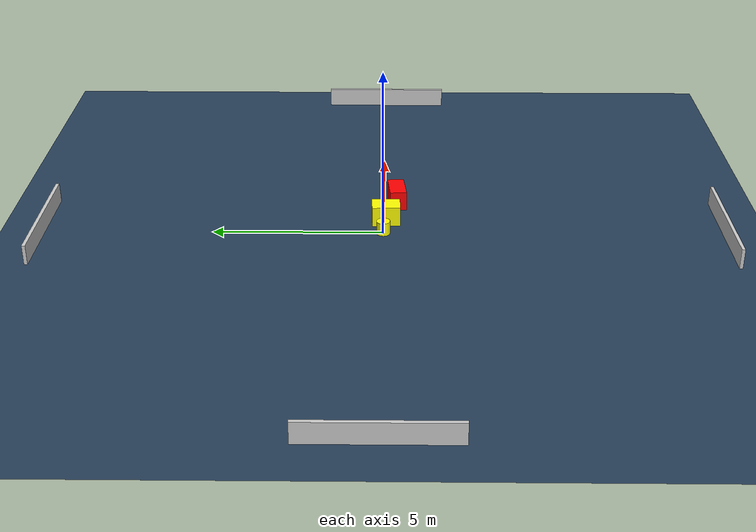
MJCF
<?xml version="1.0" ?>
<mujoco model="generated_environment">
  <option timestep="0.01" integrator="RK4" cone="elliptic"/>
  <default>
    <geom density="1"/>
  </default>
  <asset>
    <texture builtin="gradient" height="3072" name="skybox" rgb1="0.3 0.5 0.7" rgb2="0 0 0" type="skybox" width="512"/>
    <texture builtin="checker" height="300" name="groundplane" rgb1="0.2 0.3 0.4" rgb2="0.1 0.2 0.3" type="2d" width="300"/>
    <material name="groundplane" reflectance="0.2" texrepeat="5 5" texture="groundplane"/>
  </asset>
  <worldbody>
    <light dir="0 0 -1" directional="true" pos="0 0 1.5"/>
    <geom condim="3" friction="0.5 0.005 0.001" material="groundplane" name="floor" pos="0 0 0" size="0 0 0.05" type="plane"/>
    <body name="walls">
      <geom name="wall_1" condim="4" pos="-10.0 0.0 0.3" rgba="0.800000011920929 0.800000011920929 0.800000011920929 1.0" size="0.05 2.0 0.3" type="box"/>
      <geom name="wall_2" condim="4" pos="10.0 0.0 0.3" rgba="0.800000011920929 0.800000011920929 0.800000011920929 1.0" size="0.05 2.0 0.3" type="box"/>
      <geom name="wall_3" condim="4" pos="0.0 -10.0 0.3" rgba="0.800000011920929 0.800000011920929 0.800000011920929 1.0" size="2.0 0.05 0.3" type="box"/>
      <geom name="wall_4" condim="4" pos="0.0 10.0 0.3" rgba="0.800000011920929 0.800000011920929 0.800000011920929 1.0" size="2.0 0.05 0.3" type="box"/>
    </body>
    <body name="robot">
      <joint name="joint_x" type="slide" pos="0 0 0" axis="1 0 0"/>
      <joint name="joint_y" type="slide" pos="0 0 0" axis="0 1 0"/>
      <geom name="robot" type="cylinder" pos="0.0 0.0 0.2" size="0.2 0.2 0.0" mass="5.0" friction="1.0 0.005 0.0001" condim="4" rgba="1.0 1.0 0.0 1.0"/>
    </body>
    <body name="obstacle_1_movable">
      <geom name="obstacle_1_movable" condim="4" pos="0.7446665298340018 -0.07541201497264814 0.3" euler="0 0 272.12483763207837" friction="0.0 0.005 0.001" rgba="1.0 1.0 0.0 1.0" size="0.41895763726562407 0.30469553400203325 0.3" type="box" mass="0.1"/>
      <joint type="free"/>
    </body>
    <body name="obstacle_2_static">
      <geom name="obstacle_2_static" condim="4" pos="1.9407164509420909 -0.3973078865096435 0.3" euler="0 0 185.67984447878317" friction="0.0 0.005 0.001" rgba="1.0 0.0 0.0 1.0" size="0.46536467143194815 0.2487661408955104 0.3" type="box"/>
    </body>
  </worldbody>
  <actuator>
    <motor name="actuator_x" joint="joint_x" gear="1" ctrlrange="-1 1"/>
    <motor name="actuator_y" joint="joint_y" gear="1" ctrlrange="-1 1"/>
  </actuator>
</mujoco>
